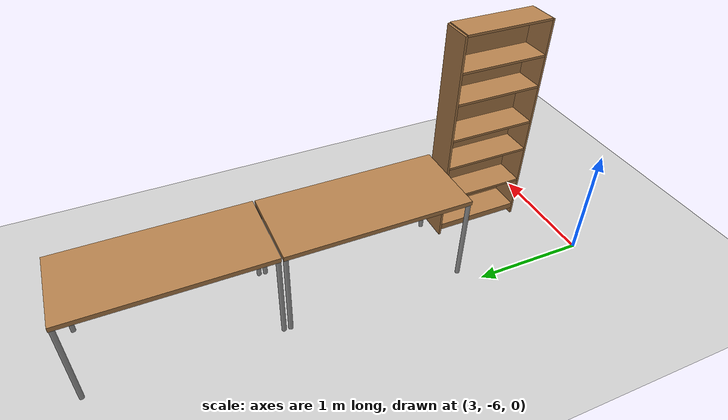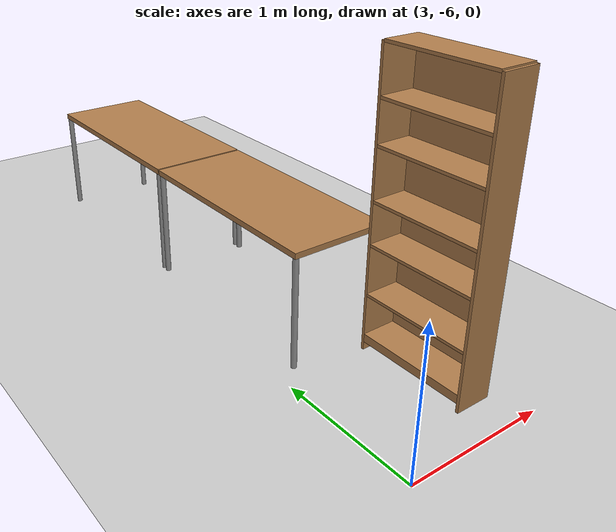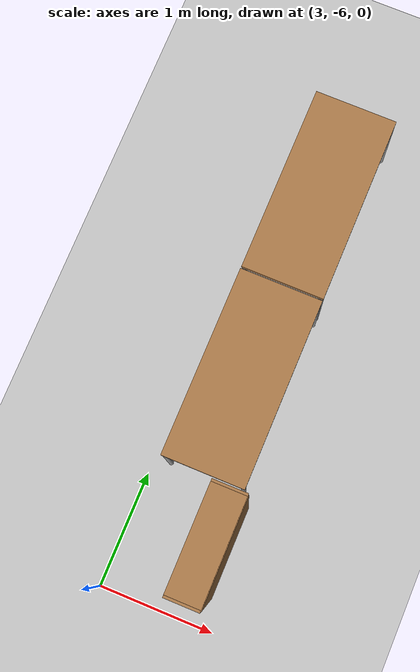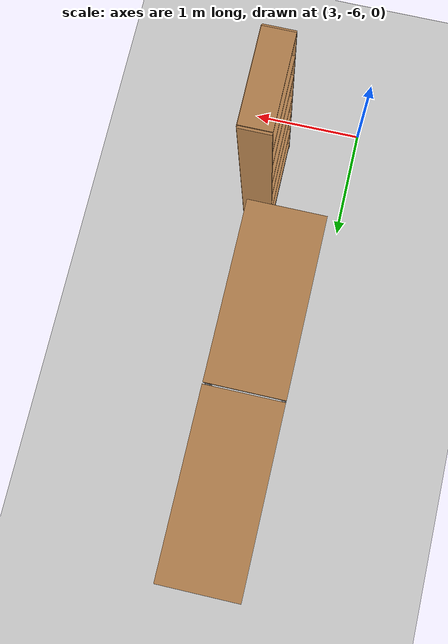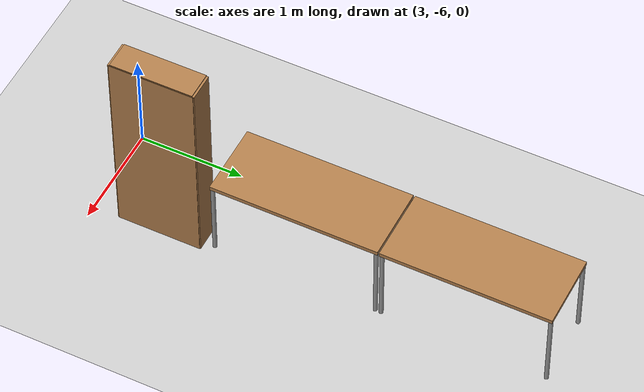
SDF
<sdf version="1.6">
 <world name="Clf Furnished">
  <model name="ground_plane">
   <static>1</static>
   <link name="link">
    <collision name="collision">
     <geometry><plane><normal>0 0 1</normal><size>100 100</size></plane></geometry>
     <surface><friction><ode><mu>100</mu><mu2>50</mu2></ode></friction></surface>
    </collision>
    <visual name="visual">
     <cast_shadows>0</cast_shadows>
     <geometry><plane><normal>0 0 1</normal><size>100 100</size></plane></geometry>
     <material>
      <script><uri>file://media/materials/scripts/gazebo.material</uri><name>Gazebo/Grey</name></script>
     </material>
    </visual>
   </link>
  </model>
  <model name="table_mod_9_clone_0">
   <link name="link">
    <inertial>
     <inertia><ixx>1</ixx><ixy>0</ixy><ixz>0</ixz><iyy>1</iyy><iyz>0</iyz><izz>1</izz></inertia>
     <mass>1</mass>
    </inertial>
    <visual name="visual1">
     <pose>0 0 0.8 0 -0 0</pose>
     <geometry><box><size>1.6 0.7 0.04</size></box></geometry>
     <material>
      <script><uri>file://media/materials/scripts/gazebo.material</uri><name>Gazebo/Wood</name></script>
      <ambient>1 1 1 1</ambient>
      <diffuse>1 1 1 1</diffuse>
      <specular>0.2 0.2 0.2 1</specular>
      <emissive>0 0 0 1</emissive>
     </material>
    </visual>
    <visual name="front_right_leg">
     <pose>0.78 -0.33 0.4 0 -0 0</pose>
     <geometry><cylinder><radius>0.02</radius><length>0.8</length></cylinder></geometry>
     <material>
      <script><uri>file://media/materials/scripts/gazebo.material</uri><name>Gazebo/Grey</name></script>
      <ambient>0.3 0.3 0.3 1</ambient>
      <diffuse>0.7 0.7 0.7 1</diffuse>
      <specular>0.01 0.01 0.01 1</specular>
      <emissive>0 0 0 1</emissive>
     </material>
    </visual>
    <visual name="front_left_leg">
     <pose>0.78 0.33 0.4 0 -0 0</pose>
     <geometry><cylinder><radius>0.02</radius><length>0.8</length></cylinder></geometry>
     <material>
      <script><uri>file://media/materials/scripts/gazebo.material</uri><name>Gazebo/Grey</name></script>
      <ambient>0.3 0.3 0.3 1</ambient>
      <diffuse>0.7 0.7 0.7 1</diffuse>
      <specular>0.01 0.01 0.01 1</specular>
      <emissive>0 0 0 1</emissive>
     </material>
    </visual>
    <visual name="back_left_leg">
     <pose>-0.78 0.33 0.4 0 -0 0</pose>
     <geometry><cylinder><radius>0.02</radius><length>0.8</length></cylinder></geometry>
     <material>
      <script><uri>file://media/materials/scripts/gazebo.material</uri><name>Gazebo/Grey</name></script>
      <ambient>0.3 0.3 0.3 1</ambient>
      <diffuse>0.7 0.7 0.7 1</diffuse>
      <specular>0.01 0.01 0.01 1</specular>
      <emissive>0 0 0 1</emissive>
     </material>
    </visual>
    <visual name="back_right_leg">
     <pose>-0.78 -0.33 0.4 0 -0 0</pose>
     <geometry><cylinder><radius>0.02</radius><length>0.8</length></cylinder></geometry>
     <material>
      <script><uri>file://media/materials/scripts/gazebo.material</uri><name>Gazebo/Grey</name></script>
      <ambient>0.3 0.3 0.3 1</ambient>
      <diffuse>0.7 0.7 0.7 1</diffuse>
      <specular>0.01 0.01 0.01 1</specular>
      <emissive>0 0 0 1</emissive>
     </material>
    </visual>
    <collision name="surface">
     <pose>0 0 0.8 0 -0 0</pose>
     <geometry><box><size>1.6 0.7 0.03</size></box></geometry>
     <surface>
      <friction>
       <ode><mu>0.6</mu><mu2>0.6</mu2><fdir1>0 0 0</fdir1><slip1>0</slip1><slip2>0</slip2></ode>
       <torsional>
        <coefficient>1</coefficient>
        <patch_radius>0</patch_radius>
        <surface_radius>0</surface_radius>
        <use_patch_radius>1</use_patch_radius>
        <ode><slip>0</slip></ode>
       </torsional>
      </friction>
      <bounce><restitution_coefficient>0</restitution_coefficient><threshold>1e+06</threshold></bounce>
      <contact>
       <collide_without_contact>0</collide_without_contact>
       <collide_without_contact_bitmask>1</collide_without_contact_bitmask>
       <collide_bitmask>1</collide_bitmask>
       <ode>
        <soft_cfm>0</soft_cfm>
        <soft_erp>0.2</soft_erp>
        <kp>1e+13</kp>
        <kd>1</kd>
        <max_vel>0.01</max_vel>
        <min_depth>0</min_depth>
       </ode>
       <bullet>
        <split_impulse>1</split_impulse>
        <split_impulse_penetration_threshold>-0.01</split_impulse_penetration_threshold>
        <soft_cfm>0</soft_cfm>
        <soft_erp>0.2</soft_erp>
        <kp>1e+13</kp>
        <kd>1</kd>
       </bullet>
      </contact>
     </surface>
    </collision>
    <collision name="front_left_leg">
     <pose>0.78 0.33 0.4 0 -0 0</pose>
     <geometry><cylinder><radius>0.02</radius><length>0.8</length></cylinder></geometry>
     <surface>
      <friction>
       <ode><mu>1</mu><mu2>1</mu2><fdir1>0 0 0</fdir1><slip1>0</slip1><slip2>0</slip2></ode>
       <torsional>
        <coefficient>1</coefficient>
        <patch_radius>0</patch_radius>
        <surface_radius>0</surface_radius>
        <use_patch_radius>1</use_patch_radius>
        <ode><slip>0</slip></ode>
       </torsional>
      </friction>
      <bounce><restitution_coefficient>0</restitution_coefficient><threshold>1e+06</threshold></bounce>
      <contact>
       <collide_without_contact>0</collide_without_contact>
       <collide_without_contact_bitmask>1</collide_without_contact_bitmask>
       <collide_bitmask>1</collide_bitmask>
       <ode>
        <soft_cfm>0</soft_cfm>
        <soft_erp>0.2</soft_erp>
        <kp>1e+13</kp>
        <kd>1</kd>
        <max_vel>0.01</max_vel>
        <min_depth>0</min_depth>
       </ode>
       <bullet>
        <split_impulse>1</split_impulse>
        <split_impulse_penetration_threshold>-0.01</split_impulse_penetration_threshold>
        <soft_cfm>0</soft_cfm>
        <soft_erp>0.2</soft_erp>
        <kp>1e+13</kp>
        <kd>1</kd>
       </bullet>
      </contact>
     </surface>
    </collision>
    <collision name="front_right_leg">
     <pose>0.78 -0.33 0.4 0 -0 0</pose>
     <geometry><cylinder><radius>0.02</radius><length>0.8</length></cylinder></geometry>
     <surface>
      <friction>
       <ode><mu>1</mu><mu2>1</mu2><fdir1>0 0 0</fdir1><slip1>0</slip1><slip2>0</slip2></ode>
       <torsional>
        <coefficient>1</coefficient>
        <patch_radius>0</patch_radius>
        <surface_radius>0</surface_radius>
        <use_patch_radius>1</use_patch_radius>
        <ode><slip>0</slip></ode>
       </torsional>
      </friction>
      <bounce><restitution_coefficient>0</restitution_coefficient><threshold>1e+06</threshold></bounce>
      <contact>
       <collide_without_contact>0</collide_without_contact>
       <collide_without_contact_bitmask>1</collide_without_contact_bitmask>
       <collide_bitmask>1</collide_bitmask>
       <ode>
        <soft_cfm>0</soft_cfm>
        <soft_erp>0.2</soft_erp>
        <kp>1e+13</kp>
        <kd>1</kd>
        <max_vel>0.01</max_vel>
        <min_depth>0</min_depth>
       </ode>
       <bullet>
        <split_impulse>1</split_impulse>
        <split_impulse_penetration_threshold>-0.01</split_impulse_penetration_threshold>
        <soft_cfm>0</soft_cfm>
        <soft_erp>0.2</soft_erp>
        <kp>1e+13</kp>
        <kd>1</kd>
       </bullet>
      </contact>
     </surface>
    </collision>
    <collision name="back_right_leg">
     <pose>-0.78 -0.33 0.4 0 -0 0</pose>
     <geometry><cylinder><radius>0.02</radius><length>0.8</length></cylinder></geometry>
     <surface>
      <friction>
       <ode><mu>1</mu><mu2>1</mu2><fdir1>0 0 0</fdir1><slip1>0</slip1><slip2>0</slip2></ode>
       <torsional>
        <coefficient>1</coefficient>
        <patch_radius>0</patch_radius>
        <surface_radius>0</surface_radius>
        <use_patch_radius>1</use_patch_radius>
        <ode><slip>0</slip></ode>
       </torsional>
      </friction>
      <bounce><restitution_coefficient>0</restitution_coefficient><threshold>1e+06</threshold></bounce>
      <contact>
       <collide_without_contact>0</collide_without_contact>
       <collide_without_contact_bitmask>1</collide_without_contact_bitmask>
       <collide_bitmask>1</collide_bitmask>
       <ode>
        <soft_cfm>0</soft_cfm>
        <soft_erp>0.2</soft_erp>
        <kp>1e+13</kp>
        <kd>1</kd>
        <max_vel>0.01</max_vel>
        <min_depth>0</min_depth>
       </ode>
       <bullet>
        <split_impulse>1</split_impulse>
        <split_impulse_penetration_threshold>-0.01</split_impulse_penetration_threshold>
        <soft_cfm>0</soft_cfm>
        <soft_erp>0.2</soft_erp>
        <kp>1e+13</kp>
        <kd>1</kd>
       </bullet>
      </contact>
     </surface>
    </collision>
    <collision name="back_left_leg">
     <pose>-0.78 0.33 0.4 0 -0 0</pose>
     <geometry><cylinder><radius>0.02</radius><length>0.8</length></cylinder></geometry>
     <surface>
      <friction>
       <ode><mu>1</mu><mu2>1</mu2><fdir1>0 0 0</fdir1><slip1>0</slip1><slip2>0</slip2></ode>
       <torsional>
        <coefficient>1</coefficient>
        <patch_radius>0</patch_radius>
        <surface_radius>0</surface_radius>
        <use_patch_radius>1</use_patch_radius>
        <ode><slip>0</slip></ode>
       </torsional>
      </friction>
      <bounce><restitution_coefficient>0</restitution_coefficient><threshold>1e+06</threshold></bounce>
      <contact>
       <collide_without_contact>0</collide_without_contact>
       <collide_without_contact_bitmask>1</collide_without_contact_bitmask>
       <collide_bitmask>1</collide_bitmask>
       <ode>
        <soft_cfm>0</soft_cfm>
        <soft_erp>0.2</soft_erp>
        <kp>1e+13</kp>
        <kd>1</kd>
        <max_vel>0.01</max_vel>
        <min_depth>0</min_depth>
       </ode>
       <bullet>
        <split_impulse>1</split_impulse>
        <split_impulse_penetration_threshold>-0.01</split_impulse_penetration_threshold>
        <soft_cfm>0</soft_cfm>
        <soft_erp>0.2</soft_erp>
        <kp>1e+13</kp>
        <kd>1</kd>
       </bullet>
      </contact>
     </surface>
    </collision>
   </link>
   <static>0</static>
   <pose>3.48172 -2.44387 -7e-06 -0 2e-06 1.56875</pose>
  </model>
  <model name="table_mod_9_clone_1">
   <link name="link">
    <inertial>
     <inertia><ixx>1</ixx><ixy>0</ixy><ixz>0</ixz><iyy>1</iyy><iyz>0</iyz><izz>1</izz></inertia>
     <mass>1</mass>
    </inertial>
    <visual name="visual1">
     <pose>0 0 0.8 0 -0 0</pose>
     <geometry><box><size>1.6 0.7 0.04</size></box></geometry>
     <material>
      <script><uri>file://media/materials/scripts/gazebo.material</uri><name>Gazebo/Wood</name></script>
      <ambient>1 1 1 1</ambient>
      <diffuse>1 1 1 1</diffuse>
      <specular>0.2 0.2 0.2 1</specular>
      <emissive>0 0 0 1</emissive>
     </material>
    </visual>
    <visual name="front_right_leg">
     <pose>0.78 -0.33 0.4 0 -0 0</pose>
     <geometry><cylinder><radius>0.02</radius><length>0.8</length></cylinder></geometry>
     <material>
      <script><uri>file://media/materials/scripts/gazebo.material</uri><name>Gazebo/Grey</name></script>
      <ambient>0.3 0.3 0.3 1</ambient>
      <diffuse>0.7 0.7 0.7 1</diffuse>
      <specular>0.01 0.01 0.01 1</specular>
      <emissive>0 0 0 1</emissive>
     </material>
    </visual>
    <visual name="front_left_leg">
     <pose>0.78 0.33 0.4 0 -0 0</pose>
     <geometry><cylinder><radius>0.02</radius><length>0.8</length></cylinder></geometry>
     <material>
      <script><uri>file://media/materials/scripts/gazebo.material</uri><name>Gazebo/Grey</name></script>
      <ambient>0.3 0.3 0.3 1</ambient>
      <diffuse>0.7 0.7 0.7 1</diffuse>
      <specular>0.01 0.01 0.01 1</specular>
      <emissive>0 0 0 1</emissive>
     </material>
    </visual>
    <visual name="back_left_leg">
     <pose>-0.78 0.33 0.4 0 -0 0</pose>
     <geometry><cylinder><radius>0.02</radius><length>0.8</length></cylinder></geometry>
     <material>
      <script><uri>file://media/materials/scripts/gazebo.material</uri><name>Gazebo/Grey</name></script>
      <ambient>0.3 0.3 0.3 1</ambient>
      <diffuse>0.7 0.7 0.7 1</diffuse>
      <specular>0.01 0.01 0.01 1</specular>
      <emissive>0 0 0 1</emissive>
     </material>
    </visual>
    <visual name="back_right_leg">
     <pose>-0.78 -0.33 0.4 0 -0 0</pose>
     <geometry><cylinder><radius>0.02</radius><length>0.8</length></cylinder></geometry>
     <material>
      <script><uri>file://media/materials/scripts/gazebo.material</uri><name>Gazebo/Grey</name></script>
      <ambient>0.3 0.3 0.3 1</ambient>
      <diffuse>0.7 0.7 0.7 1</diffuse>
      <specular>0.01 0.01 0.01 1</specular>
      <emissive>0 0 0 1</emissive>
     </material>
    </visual>
    <collision name="surface">
     <pose>0 0 0.8 0 -0 0</pose>
     <geometry><box><size>1.6 0.7 0.03</size></box></geometry>
     <surface>
      <friction>
       <ode><mu>0.6</mu><mu2>0.6</mu2><fdir1>0 0 0</fdir1><slip1>0</slip1><slip2>0</slip2></ode>
       <torsional>
        <coefficient>1</coefficient>
        <patch_radius>0</patch_radius>
        <surface_radius>0</surface_radius>
        <use_patch_radius>1</use_patch_radius>
        <ode><slip>0</slip></ode>
       </torsional>
      </friction>
      <bounce><restitution_coefficient>0</restitution_coefficient><threshold>1e+06</threshold></bounce>
      <contact>
       <collide_without_contact>0</collide_without_contact>
       <collide_without_contact_bitmask>1</collide_without_contact_bitmask>
       <collide_bitmask>1</collide_bitmask>
       <ode>
        <soft_cfm>0</soft_cfm>
        <soft_erp>0.2</soft_erp>
        <kp>1e+13</kp>
        <kd>1</kd>
        <max_vel>0.01</max_vel>
        <min_depth>0</min_depth>
       </ode>
       <bullet>
        <split_impulse>1</split_impulse>
        <split_impulse_penetration_threshold>-0.01</split_impulse_penetration_threshold>
        <soft_cfm>0</soft_cfm>
        <soft_erp>0.2</soft_erp>
        <kp>1e+13</kp>
        <kd>1</kd>
       </bullet>
      </contact>
     </surface>
    </collision>
    <collision name="front_left_leg">
     <pose>0.78 0.33 0.4 0 -0 0</pose>
     <geometry><cylinder><radius>0.02</radius><length>0.8</length></cylinder></geometry>
     <surface>
      <friction>
       <ode><mu>1</mu><mu2>1</mu2><fdir1>0 0 0</fdir1><slip1>0</slip1><slip2>0</slip2></ode>
       <torsional>
        <coefficient>1</coefficient>
        <patch_radius>0</patch_radius>
        <surface_radius>0</surface_radius>
        <use_patch_radius>1</use_patch_radius>
        <ode><slip>0</slip></ode>
       </torsional>
      </friction>
      <bounce><restitution_coefficient>0</restitution_coefficient><threshold>1e+06</threshold></bounce>
      <contact>
       <collide_without_contact>0</collide_without_contact>
       <collide_without_contact_bitmask>1</collide_without_contact_bitmask>
       <collide_bitmask>1</collide_bitmask>
       <ode>
        <soft_cfm>0</soft_cfm>
        <soft_erp>0.2</soft_erp>
        <kp>1e+13</kp>
        <kd>1</kd>
        <max_vel>0.01</max_vel>
        <min_depth>0</min_depth>
       </ode>
       <bullet>
        <split_impulse>1</split_impulse>
        <split_impulse_penetration_threshold>-0.01</split_impulse_penetration_threshold>
        <soft_cfm>0</soft_cfm>
        <soft_erp>0.2</soft_erp>
        <kp>1e+13</kp>
        <kd>1</kd>
       </bullet>
      </contact>
     </surface>
    </collision>
    <collision name="front_right_leg">
     <pose>0.78 -0.33 0.4 0 -0 0</pose>
     <geometry><cylinder><radius>0.02</radius><length>0.8</length></cylinder></geometry>
     <surface>
      <friction>
       <ode><mu>1</mu><mu2>1</mu2><fdir1>0 0 0</fdir1><slip1>0</slip1><slip2>0</slip2></ode>
       <torsional>
        <coefficient>1</coefficient>
        <patch_radius>0</patch_radius>
        <surface_radius>0</surface_radius>
        <use_patch_radius>1</use_patch_radius>
        <ode><slip>0</slip></ode>
       </torsional>
      </friction>
      <bounce><restitution_coefficient>0</restitution_coefficient><threshold>1e+06</threshold></bounce>
      <contact>
       <collide_without_contact>0</collide_without_contact>
       <collide_without_contact_bitmask>1</collide_without_contact_bitmask>
       <collide_bitmask>1</collide_bitmask>
       <ode>
        <soft_cfm>0</soft_cfm>
        <soft_erp>0.2</soft_erp>
        <kp>1e+13</kp>
        <kd>1</kd>
        <max_vel>0.01</max_vel>
        <min_depth>0</min_depth>
       </ode>
       <bullet>
        <split_impulse>1</split_impulse>
        <split_impulse_penetration_threshold>-0.01</split_impulse_penetration_threshold>
        <soft_cfm>0</soft_cfm>
        <soft_erp>0.2</soft_erp>
        <kp>1e+13</kp>
        <kd>1</kd>
       </bullet>
      </contact>
     </surface>
    </collision>
    <collision name="back_right_leg">
     <pose>-0.78 -0.33 0.4 0 -0 0</pose>
     <geometry><cylinder><radius>0.02</radius><length>0.8</length></cylinder></geometry>
     <surface>
      <friction>
       <ode><mu>1</mu><mu2>1</mu2><fdir1>0 0 0</fdir1><slip1>0</slip1><slip2>0</slip2></ode>
       <torsional>
        <coefficient>1</coefficient>
        <patch_radius>0</patch_radius>
        <surface_radius>0</surface_radius>
        <use_patch_radius>1</use_patch_radius>
        <ode><slip>0</slip></ode>
       </torsional>
      </friction>
      <bounce><restitution_coefficient>0</restitution_coefficient><threshold>1e+06</threshold></bounce>
      <contact>
       <collide_without_contact>0</collide_without_contact>
       <collide_without_contact_bitmask>1</collide_without_contact_bitmask>
       <collide_bitmask>1</collide_bitmask>
       <ode>
        <soft_cfm>0</soft_cfm>
        <soft_erp>0.2</soft_erp>
        <kp>1e+13</kp>
        <kd>1</kd>
        <max_vel>0.01</max_vel>
        <min_depth>0</min_depth>
       </ode>
       <bullet>
        <split_impulse>1</split_impulse>
        <split_impulse_penetration_threshold>-0.01</split_impulse_penetration_threshold>
        <soft_cfm>0</soft_cfm>
        <soft_erp>0.2</soft_erp>
        <kp>1e+13</kp>
        <kd>1</kd>
       </bullet>
      </contact>
     </surface>
    </collision>
    <collision name="back_left_leg">
     <pose>-0.78 0.33 0.4 0 -0 0</pose>
     <geometry><cylinder><radius>0.02</radius><length>0.8</length></cylinder></geometry>
     <surface>
      <friction>
       <ode><mu>1</mu><mu2>1</mu2><fdir1>0 0 0</fdir1><slip1>0</slip1><slip2>0</slip2></ode>
       <torsional>
        <coefficient>1</coefficient>
        <patch_radius>0</patch_radius>
        <surface_radius>0</surface_radius>
        <use_patch_radius>1</use_patch_radius>
        <ode><slip>0</slip></ode>
       </torsional>
      </friction>
      <bounce><restitution_coefficient>0</restitution_coefficient><threshold>1e+06</threshold></bounce>
      <contact>
       <collide_without_contact>0</collide_without_contact>
       <collide_without_contact_bitmask>1</collide_without_contact_bitmask>
       <collide_bitmask>1</collide_bitmask>
       <ode>
        <soft_cfm>0</soft_cfm>
        <soft_erp>0.2</soft_erp>
        <kp>1e+13</kp>
        <kd>1</kd>
        <max_vel>0.01</max_vel>
        <min_depth>0</min_depth>
       </ode>
       <bullet>
        <split_impulse>1</split_impulse>
        <split_impulse_penetration_threshold>-0.01</split_impulse_penetration_threshold>
        <soft_cfm>0</soft_cfm>
        <soft_erp>0.2</soft_erp>
        <kp>1e+13</kp>
        <kd>1</kd>
       </bullet>
      </contact>
     </surface>
    </collision>
   </link>
   <static>0</static>
   <pose>3.47668 -4.06004 -7e-06 -0 2e-06 1.56875</pose>
  </model>
  <model name="bookshelf">
   <pose>3.8826 -5.3472 0.0 0.0 0.0 -1.5708</pose>
   <static>true</static>
   <link name="link">
    <inertial><mass>1.0</mass></inertial>
    <collision name="c_back">
     <pose>0 0.005 1.0 0 0 0</pose>
     <geometry><box><size>0.8 0.01 2.0</size></box></geometry>
    </collision>
    <visual name="v_back">
     <pose>0 0.005 1.0 0 0 0</pose>
     <geometry><box><size>0.8 0.01 2.0</size></box></geometry>
     <material>
      <script><uri>file://media/materials/scripts/gazebo.material</uri><name>Gazebo/Wood</name></script>
     </material>
    </visual>
    <collision name="left_side">
     <pose>0.4 -0.125 1.0 0 0 0</pose>
     <geometry><box><size>0.02 0.26 2.0</size></box></geometry>
    </collision>
    <visual name="visual2">
     <pose>0.4 -0.125 1.0 0 0 0</pose>
     <geometry><box><size>0.02 0.26 2.0</size></box></geometry>
     <material>
      <script><uri>file://media/materials/scripts/gazebo.material</uri><name>Gazebo/Wood</name></script>
     </material>
    </visual>
    <collision name="right_side">
     <pose>-0.4 -0.125 1.0 0 0 0</pose>
     <geometry><box><size>0.02 0.26 2.0</size></box></geometry>
    </collision>
    <visual name="visual3">
     <pose>-0.4 -0.125 1.0 0 0 0</pose>
     <geometry><box><size>0.02 0.26 2.0</size></box></geometry>
     <material>
      <script><uri>file://media/materials/scripts/gazebo.material</uri><name>Gazebo/Wood</name></script>
     </material>
    </visual>
    <collision name="bottom">
     <pose>0 -0.125 0.09 0 0 0</pose>
     <geometry><box><size>0.78 0.26 0.06</size></box></geometry>
    </collision>
    <visual name="visual4">
     <pose>0 -0.125 0.09 0 0 0</pose>
     <geometry><box><size>0.78 0.26 0.06</size></box></geometry>
     <material>
      <script><uri>file://media/materials/scripts/gazebo.material</uri><name>Gazebo/Wood</name></script>
     </material>
    </visual>
    <collision name="low_shelf">
     <pose>0 -0.125 0.41 0 0 0</pose>
     <geometry><box><size>0.78 0.26 0.02</size></box></geometry>
    </collision>
    <visual name="visual6">
     <pose>0 -0.125 0.41 0 0 0</pose>
     <geometry><box><size>0.78 0.26 0.02</size></box></geometry>
     <material>
      <script><uri>file://media/materials/scripts/gazebo.material</uri><name>Gazebo/Wood</name></script>
     </material>
    </visual>
    <collision name="high_shelf">
     <pose>0 -0.125 0.76 0 0 0</pose>
     <geometry><box><size>0.78 0.26 0.02</size></box></geometry>
    </collision>
    <visual name="visual7">
     <pose>0 -0.125 0.76 0 0 0</pose>
     <geometry><box><size>0.78 0.26 0.02</size></box></geometry>
     <material>
      <script><uri>file://media/materials/scripts/gazebo.material</uri><name>Gazebo/Wood</name></script>
     </material>
    </visual>
    <collision name="c_shelf3">
     <pose>0 -0.125 1.05 0 0 0</pose>
     <geometry><box><size>0.78 0.26 0.02</size></box></geometry>
    </collision>
    <visual name="v_shelf3">
     <pose>0 -0.125 1.05 0 0 0</pose>
     <geometry><box><size>0.78 0.26 0.02</size></box></geometry>
     <material>
      <script><uri>file://media/materials/scripts/gazebo.material</uri><name>Gazebo/Wood</name></script>
     </material>
    </visual>
    <collision name="c_shelf4">
     <pose>0 -0.125 1.4 0 0 0</pose>
     <geometry><box><size>0.78 0.26 0.02</size></box></geometry>
    </collision>
    <visual name="v_shelf4">
     <pose>0 -0.125 1.4 0 0 0</pose>
     <geometry><box><size>0.78 0.26 0.02</size></box></geometry>
     <material>
      <script><uri>file://media/materials/scripts/gazebo.material</uri><name>Gazebo/Wood</name></script>
     </material>
    </visual>
    <collision name="c_shelf5">
     <pose>0 -0.125 1.685 0 0 0</pose>
     <geometry><box><size>0.78 0.26 0.02</size></box></geometry>
    </collision>
    <visual name="v_shelf5">
     <pose>0 -0.125 1.685 0 0 0</pose>
     <geometry><box><size>0.78 0.26 0.02</size></box></geometry>
     <material>
      <script><uri>file://media/materials/scripts/gazebo.material</uri><name>Gazebo/Wood</name></script>
     </material>
    </visual>
    <collision name="top">
     <pose>0 -0.125 2.0 0 0 0</pose>
     <geometry><box><size>0.78 0.26 0.02</size></box></geometry>
    </collision>
    <visual name="visual5">
     <pose>0 -0.125 2.0 0 0 0</pose>
     <geometry><box><size>0.78 0.26 0.02</size></box></geometry>
     <material>
      <script><uri>file://media/materials/scripts/gazebo.material</uri><name>Gazebo/Wood</name></script>
     </material>
    </visual>
   </link>
  </model>
 </world>
</sdf>
